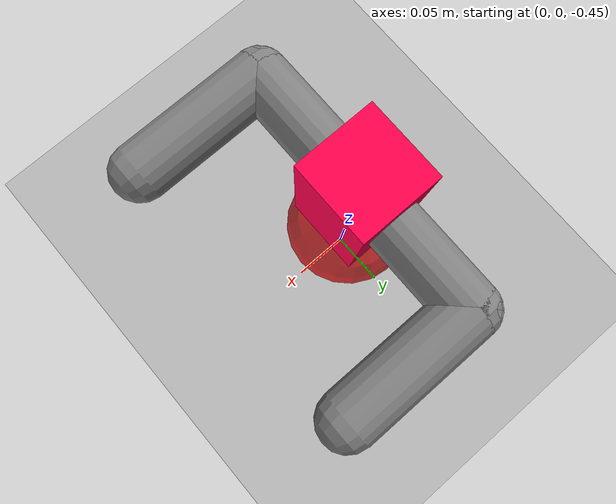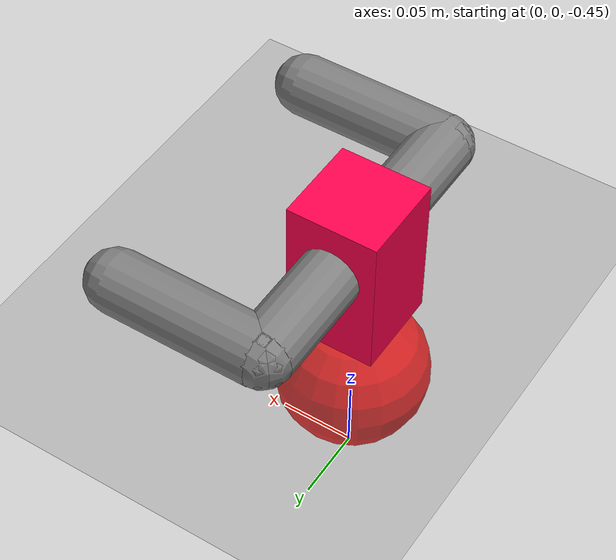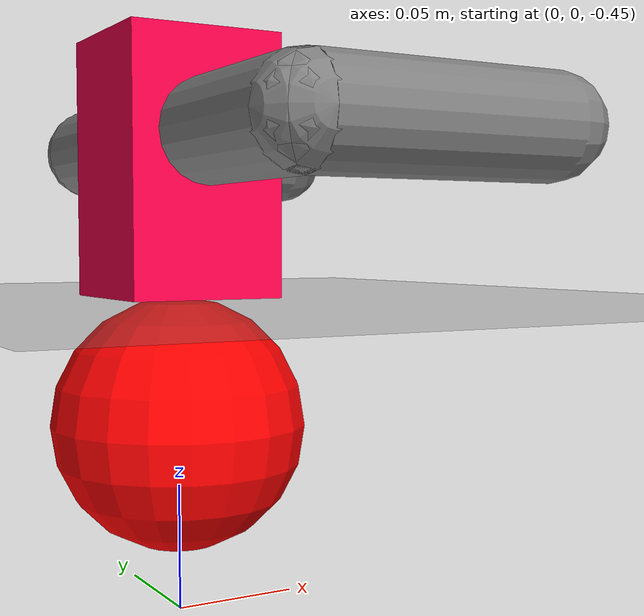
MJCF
<mujoco model="arm3d">
    <compiler angle="radian" coordinate="local" inertiafromgeom="true" meshdir="mesh" texturedir="textures" />
    <option gravity="0 0 0" integrator="Euler" iterations="20" timestep="0.01" />

    <default>
        <joint armature="0.04" damping="1" limited="true" />
        <geom conaffinity="0" condim="1" contype="0" density="10" friction=".8 .1 .1" margin="0.002" />
    </default>

    <worldbody>
        <light diffuse=".5 .5 .5" dir="0 0 -1" pos="0 0 3" />

        <geom conaffinity="1" contype="1" condim="1" name="table" pos="0 0.5 -0.325" size="10 10 0.1" type="plane" />

        <camera name="fixed" pos="0.5 -1.5 1.0" quat="0.92388 0.382683 0 0" />

        <body name="wrist base" pos="0. 0. -0.2630">
            <joint axis="1 0 0" damping="0.5" name="wrist_slidex" pos="0 0 0" range="-1. 2." type="slide" />
            <joint axis="0 1 0" damping="0.5" name="wrist_slidey" pos="0 0 0" range="-2. 2." type="slide" />
            <joint axis="0 0 1" damping="0.5" name="wrist_hinge" pos="0 0 0" range="-10. 10." type="hinge" />
          <body name="tips_arm" pos="0 0 0">
            <geom conaffinity="1" contype="1" condim="1" name="tip_arml" pos="0.1 -0.1 0." size="0.01" type="sphere" />
            <geom conaffinity="1" contype="1" condim="1" name="tip_armr" pos="0.1 0.1 0." size="0.01" type="sphere" />
            <site name="arm" pos="0.02 0 0" size="0.001" />
          </body>
          <geom conaffinity="1" contype="1" condim="1" fromto="0 -0.1 0. 0.0 +0.1 0" size="0.02" type="capsule" />
          <geom conaffinity="1" contype="1" condim="1" fromto="0 -0.1 0. 0.1 -0.1 0" size="0.02" type="capsule" />
          <geom conaffinity="1" contype="1" condim="1" fromto="0 +0.1 0. 0.1 +0.1 0." size="0.02" type="capsule" />
        </body>

        <body name="obj0" pos="0. 0. -0.325">
            <joint axis="1 0 0" damping="1.5" name="obj1_slidex" pos="0 0 0.0" range="-1. 2." type="slide" />
            <joint axis="0 1 0" damping="1.5" name="obj1_slidey" pos="0 0 0.0" range="-1. 2." type="slide" />
            <geom conaffinity="1" contype="1" pos="0 0 0.05" density="0.0005" size="0.03 0.03 0.05" rgba="1 0. 0.3 1" type="box" />
        </body>

        <body name="obj1" pos="0. 0. -0.325">
            <joint axis="1 0 0" damping="1.5" name="obj2_slidex" pos="0 0 0.0" range="-1. 2." type="slide" />
            <joint axis="0 1 0" damping="1.5" name="obj2_slidey" pos="0 0 0.0" range="-1. 2." type="slide" />
            <geom conaffinity="1" contype="1" pos="0 0 0.05" density="0.0005" size="0.03 0.03 0.05" rgba="0. 1. 0.7 1" type="box" />
        </body>

        <body name="obj2" pos="0. 0. -0.325">
            <joint axis="1 0 0" damping="1.5" name="obj3_slidex" pos="0 0 0.0" range="-1. 2." type="slide" />
            <joint axis="0 1 0" damping="1.5" name="obj3_slidey" pos="0 0 0.0" range="-1. 2." type="slide" />
            <geom conaffinity="1" contype="1" pos="0 0 0.05" density="0.0005" size="0.03 0.03 0.05" rgba="1 1 0. 1" type="box" />
        </body>

        <body name="obj3" pos="0. 0. -0.325">
            <joint axis="1 0 0" damping="1.5" name="obj4_slidex" pos="0 0 0.0" range="-1. 2." type="slide" />
            <joint axis="0 1 0" damping="1.5" name="obj4_slidey" pos="0 0 0.0" range="-1. 2." type="slide" />
            <geom conaffinity="1" contype="1" pos="0 0 0.05" density="0.0005" size="0.03 0.03 0.05" rgba="1 0. 1 1" type="box" />
        </body>

        <body name="obj4" pos="0. 0. -0.325">
            <joint axis="1 0 0" damping="1.5" name="obj5_slidex" pos="0 0 0.0" range="-1. 2." type="slide" />
            <joint axis="0 1 0" damping="1.5" name="obj5_slidey" pos="0 0 0.0" range="-1. 2." type="slide" />
            <geom conaffinity="1" contype="1" pos="0 0 0.05" density="0.0005" size="0.03 0.03 0.05" rgba="0. 1 1 1" type="box" />
        </body>

        <!-- ======= DESTINATION ======= -->
        <site name="target" pos="0. 0. -0.375" size="0.05" rgba="1. 0. 0. 1" />

    </worldbody>

    <actuator>
        <motor ctrllimited="true" ctrlrange="-2.0 2.0" joint="wrist_slidex" />
        <motor ctrllimited="true" ctrlrange="-2.0 2.0" joint="wrist_slidey" />
        <motor ctrllimited="true" ctrlrange="-2.0 2.0" joint="wrist_hinge" />
    </actuator>

</mujoco>
